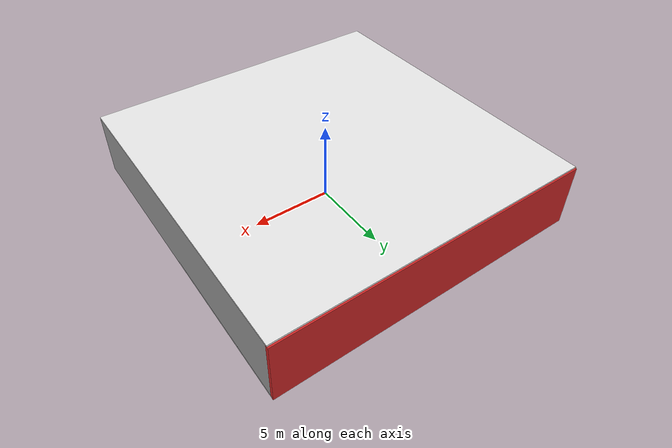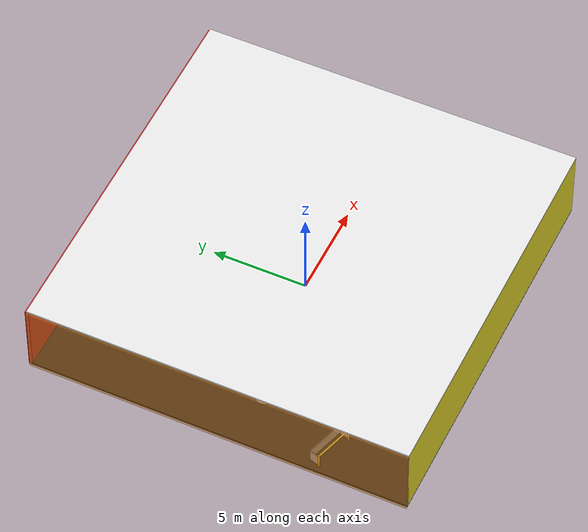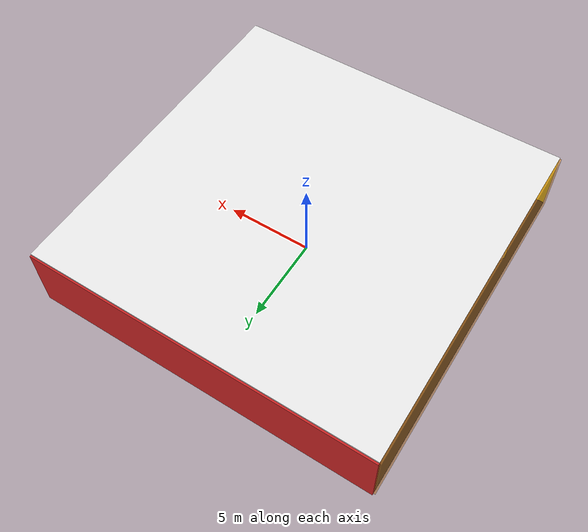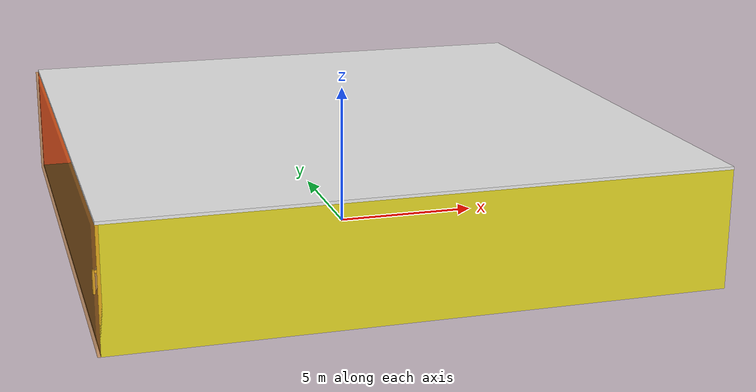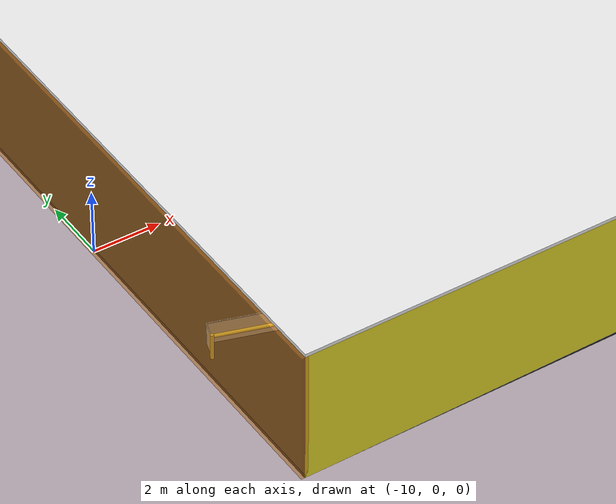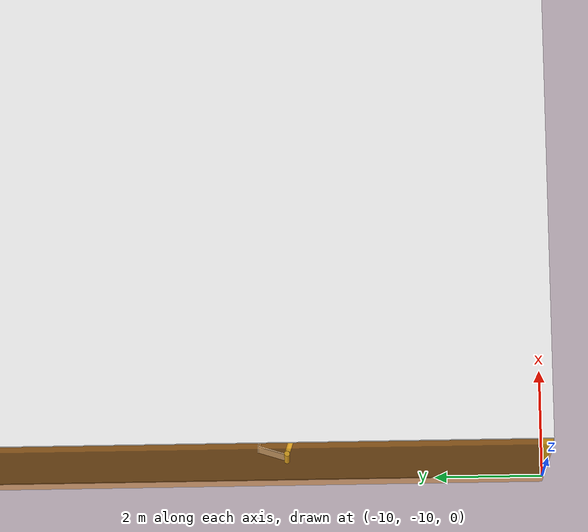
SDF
<sdf version="1.4">
 <world name="default">
  <physics type="ode">
   <max_step_size>0.001</max_step_size>
   <real_time_factor>1</real_time_factor>
   <real_time_update_rate>1000</real_time_update_rate>
   <gravity>0 0 -9.8</gravity>
  </physics>
  <scene><ambient>0.4 0.4 0.4 1</ambient><background>0.7 0.7 0.7 1</background><shadows>1</shadows></scene>
  <model name="Surrounding">
   <static>1</static>
   <link name="Ceiling">
    <collision name="Ceiling_Collision"><geometry><box><size>20 20 0.1</size></box></geometry></collision>
    <visual name="Ceiling_Visual">
     <geometry><box><size>20 20 0.1</size></box></geometry>
     <material>
      <script><uri>file://media/materials/scripts/gazebo.material</uri><name>Gazebo/White</name></script>
     </material>
    </visual>
    <pose>0 0 4.05 0 0 0</pose>
   </link>
   <link name="Wall_South">
    <collision name="Wall_South_Collision">
     <geometry><box><size>20 0 4</size></box></geometry>
     <pose>0 0 2 0 -0 0</pose>
    </collision>
    <visual name="Wall_South_Visual">
     <pose>0 0 2 0 -0 0</pose>
     <geometry><box><size>20 0 4</size></box></geometry>
     <material>
      <script><uri>file://media/materials/scripts/gazebo.material</uri><name>Gazebo/YellowGlow</name></script>
     </material>
    </visual>
    <velocity_decay><linear>0</linear><angular>0</angular></velocity_decay>
    <pose>0 -10 0 0 -0 0</pose>
   </link>
   <link name="Wall_East">
    <collision name="Wall_21_Collision">
     <geometry><box><size>20 0 4</size></box></geometry>
     <pose>0 0 2 0 -0 0</pose>
    </collision>
    <visual name="Wall_21_Visual">
     <pose>0 0 2 0 -0 0</pose>
     <geometry><box><size>20 0 4</size></box></geometry>
     <material>
      <script><uri>file://media/materials/scripts/gazebo.material</uri><name>Gazebo/GreyGradientSky</name></script>
     </material>
    </visual>
    <velocity_decay><linear>0</linear><angular>0</angular></velocity_decay>
    <pose>10 0 0 0 -0 1.5708</pose>
   </link>
   <link name="Wall_North">
    <collision name="Wall_22_Collision">
     <geometry><box><size>20 0.2 4</size></box></geometry>
     <pose>0 0 2 0 -0 0</pose>
    </collision>
    <visual name="Wall_22_Visual">
     <pose>0 0 2 0 -0 0</pose>
     <geometry><box><size>20 0.2 4</size></box></geometry>
     <material>
      <script><uri>file://media/materials/scripts/gazebo.material</uri><name>Gazebo/RedGlow</name></script>
     </material>
    </visual>
    <velocity_decay><linear>0</linear><angular>0</angular></velocity_decay>
    <pose>0 10 0 0 -0 0</pose>
   </link>
   <link name="Wall_West">
    <collision name="Wall_23_Collision">
     <geometry><box><size>20 0.2 4</size></box></geometry>
     <pose>0 0 2 0 -0 0</pose>
    </collision>
    <visual name="Wall_23_Visual">
     <pose>0 0 2 0 -0 0</pose>
     <geometry><box><size>20 0.2 4</size></box></geometry>
     <material>
      <script>
       <uri>file://media/materials/scripts/gazebo.material</uri>
       <name>Gazebo/OrangeTransparent</name>
      </script>
     </material>
    </visual>
    <velocity_decay><linear>0</linear><angular>0</angular></velocity_decay>
    <pose>-10 0 0 0 0 -1.5708</pose>
   </link>
   <link name="Ground_link">
    <collision name="collision">
     <pose>0 0 .05 0 -0 0</pose>
     <geometry><box><size>20 20 0.1</size></box></geometry>
    </collision>
    <visual name="visual">
     <pose>0 0 .05 0 -0 0</pose>
     <geometry><box><size>20 20 0.1</size></box></geometry>
     <material>
      <script><uri>file://media/materials/scripts/gazebo.material</uri><name>Gazebo/FlatBlack</name></script>
     </material>
    </visual>
   </link>
   <static>1</static>
  </model>
  <spherical_coordinates>
   <surface_model>EARTH_WGS84</surface_model>
   <latitude_deg>0</latitude_deg>
   <longitude_deg>0</longitude_deg>
   <elevation>0</elevation>
   <heading_deg>0</heading_deg>
  </spherical_coordinates>
  <light name="lightball_0" type="diffuse">
   <diffuse>0.8 0.8 0.8 1</diffuse>
   <specular>0.2 0.2 0.2 1</specular>
   <attenuation>
    <range>100</range>
    <constant>0.7</constant>
    <linear>0.01</linear>
    <quadratic>0.001</quadratic>
   </attenuation>
   <direction>-0.5 0.1 -0.9</direction>
   <pose>3.74240497516 1.02714031986 2.77479388131 0 0 0</pose>
  </light>
  <light name="lightball_1" type="diffuse">
   <diffuse>0.8 0.8 0.8 1</diffuse>
   <specular>0.2 0.2 0.2 1</specular>
   <attenuation>
    <range>100</range>
    <constant>0.7</constant>
    <linear>0.01</linear>
    <quadratic>0.001</quadratic>
   </attenuation>
   <direction>-0.5 0.1 -0.9</direction>
   <pose>-4.20317650977 -3.43361009668 3.38952698086 0 0 0</pose>
  </light>
  <light name="lightball_2" type="diffuse">
   <diffuse>0.8 0.8 0.8 1</diffuse>
   <specular>0.2 0.2 0.2 1</specular>
   <attenuation>
    <range>100</range>
    <constant>0.7</constant>
    <linear>0.01</linear>
    <quadratic>0.001</quadratic>
   </attenuation>
   <direction>-0.5 0.1 -0.9</direction>
   <pose>-8.08109676438 7.47706522649 2.09544960542 0 0 0</pose>
  </light>
  <light name="lightball_3" type="diffuse">
   <diffuse>0.8 0.8 0.8 1</diffuse>
   <specular>0.2 0.2 0.2 1</specular>
   <attenuation>
    <range>100</range>
    <constant>0.7</constant>
    <linear>0.01</linear>
    <quadratic>0.001</quadratic>
   </attenuation>
   <direction>-0.5 0.1 -0.9</direction>
   <pose>-7.2395933004 -2.48249838829 3.39748582723 0 0 0</pose>
  </light>
  <light name="lightball_4" type="diffuse">
   <diffuse>0.8 0.8 0.8 1</diffuse>
   <specular>0.2 0.2 0.2 1</specular>
   <attenuation>
    <range>100</range>
    <constant>0.7</constant>
    <linear>0.01</linear>
    <quadratic>0.001</quadratic>
   </attenuation>
   <direction>-0.5 0.1 -0.9</direction>
   <pose>-9.24289412239 -0.630140473675 3.58467248974 0 0 0</pose>
  </light>
  <light name="lightball_5" type="diffuse">
   <diffuse>0.8 0.8 0.8 1</diffuse>
   <specular>0.2 0.2 0.2 1</specular>
   <attenuation>
    <range>100</range>
    <constant>0.7</constant>
    <linear>0.01</linear>
    <quadratic>0.001</quadratic>
   </attenuation>
   <direction>-0.5 0.1 -0.9</direction>
   <pose>3.09929621963 -8.63172809203 3.8551975645 0 0 0</pose>
  </light>
  <light name="lightball_6" type="diffuse">
   <diffuse>0.8 0.8 0.8 1</diffuse>
   <specular>0.2 0.2 0.2 1</specular>
   <attenuation>
    <range>100</range>
    <constant>0.7</constant>
    <linear>0.01</linear>
    <quadratic>0.001</quadratic>
   </attenuation>
   <direction>-0.5 0.1 -0.9</direction>
   <pose>4.2570621036 -9.17966370233 3.01165371202 0 0 0</pose>
  </light>
  <include>
   <uri>model://robocup_3Dsim_goal</uri>
   <pose>-8.65069896384 -5.5513457453 0 0 0 1.26725509609</pose>
  </include>
  <include>
   <uri>model://textured_shapes</uri>
   <pose>-6.6847027578 -2.5988944314 0 0 0 0.229225870203</pose>
  </include>
  <include><uri>model://cabinet</uri><pose>-5.1528792934 -7.58073041152 0 0 0 1.71776001085</pose></include>
  <include><uri>model://cabinet</uri><pose>-0.722921693795 -0.324258549654 0 0 0 1.31227808289</pose></include>
  <include><uri>model://table</uri><pose>1.89971267289 -0.37682335683 0 0 0 2.87041331763</pose></include>
  <include><uri>model://table</uri><pose>2.09653220922 1.89737237608 0 0 0 0.105831134186</pose></include>
  <include>
   <uri>model://textured_shapes</uri>
   <pose>5.5630485295 -4.71493386782 0 0 0 0.3729196807</pose>
  </include>
 </world>
</sdf>

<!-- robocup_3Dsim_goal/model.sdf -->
<sdf version="1.5">
  <model name="robocup_3d_goal">
    <static>true</static>
    <link name="left_post">
      <pose>0 1.05 0.45 0 0 0</pose>
      <collision name="collision">
        <geometry>
          <cylinder>
            <radius>0.05</radius>
            <length>0.9</length>
          </cylinder>
        </geometry>
      </collision>
      <visual name="visual">
        <geometry>
          <cylinder>
            <radius>0.05</radius>
            <length>0.9</length>
          </cylinder>
        </geometry>
        <material>
          <script>
            <uri>file://media/materials/scripts/gazebo.material</uri>
            <name>Gazebo/ZincYellow</name>
          </script>
        </material>
      </visual>
    </link>
    <link name="left_support_horiz_lower">
      <pose>0.30 1.05 0.01 0 0 0</pose>
      <collision name="collision">
        <geometry>
          <box>
            <size>0.50 0.02 0.02</size>
          </box>
        </geometry>
      </collision>
      <visual name="visual">
        <geometry>
          <box>
            <size>0.50 0.02 0.02</size>
          </box>
        </geometry>
        <material>
          <script>
            <uri>file://media/materials/scripts/gazebo.material</uri>
            <name>Gazebo/White</name>
          </script>
        </material>
      </visual>
    </link>
    <link name="left_support_horiz_upper">
      <pose>0.30 1.05 0.79 0 0 0</pose>
      <collision name="collision">
        <geometry>
          <box>
            <size>0.50 0.02 0.02</size>
          </box>
        </geometry>
      </collision>
      <visual name="visual">
        <geometry>
          <box>
            <size>0.50 0.02 0.02</size>
          </box>
        </geometry>
        <material>
          <script>
            <uri>file://media/materials/scripts/gazebo.material</uri>
            <name>Gazebo/White</name>
          </script>
        </material>
      </visual>
    </link>
    <link name="left_support_vertical">
      <pose>0.56 1.05 0.4 0 1.5708 0</pose>
      <collision name="collision">
        <geometry>
          <box>
            <size>0.80 0.02 0.02</size>
          </box>
        </geometry>
      </collision>
      <visual name="visual">
        <geometry>
          <box>
            <size>0.80 0.02 0.02</size>
          </box>
        </geometry>
        <material>
          <script>
            <uri>file://media/materials/scripts/gazebo.material</uri>
            <name>Gazebo/White</name>
          </script>
        </material>
      </visual>
    </link>
    <link name="right_support_horiz_lower">
      <pose>0.30 -1.05 0.01 0 0 0</pose>
      <collision name="collision">
        <geometry>
          <box>
            <size>0.50 0.02 0.02</size>
          </box>
        </geometry>
      </collision>
      <visual name="visual">
        <geometry>
          <box>
            <size>0.50 0.02 0.02</size>
          </box>
        </geometry>
        <material>
          <script>
            <uri>file://media/materials/scripts/gazebo.material</uri>
            <name>Gazebo/White</name>
          </script>
        </material>
      </visual>
    </link>
    <link name="right_support_horiz_upper">
      <pose>0.30 -1.05 0.79 0 0 0</pose>
      <collision name="collision">
        <geometry>
          <box>
            <size>0.50 0.02 0.02</size>
          </box>
        </geometry>
      </collision>
      <visual name="visual">
        <geometry>
          <box>
            <size>0.50 0.02 0.02</size>
          </box>
        </geometry>
        <material>
          <script>
            <uri>file://media/materials/scripts/gazebo.material</uri>
            <name>Gazebo/White</name>
          </script>
        </material>
      </visual>
    </link>
    <link name="right_support_vertical">
      <pose>0.56 -1.05 0.4 0 1.5708 0</pose>
      <collision name="collision">
        <geometry>
          <box>
            <size>0.80 0.02 0.02</size>
          </box>
        </geometry>
      </collision>
      <visual name="visual">
        <geometry>
          <box>
            <size>0.80 0.02 0.02</size>
          </box>
        </geometry>
        <material>
          <script>
            <uri>file://media/materials/scripts/gazebo.material</uri>
            <name>Gazebo/White</name>
          </script>
        </material>
      </visual>
    </link>
    <link name="center_support_horiz_lower">
      <pose>0.56 0 0.01 0 1.5708 0</pose>
      <collision name="collision">
        <geometry>
          <box>
            <size>0.02 2.08 0.02</size>
          </box>
        </geometry>
      </collision>
      <visual name="visual">
        <geometry>
          <box>
            <size>0.02 2.08 0.02</size>
          </box>
        </geometry>
        <material>
          <script>
            <uri>file://media/materials/scripts/gazebo.material</uri>
            <name>Gazebo/White</name>
          </script>
        </material>
      </visual>
    </link>
    <link name="center_support_horiz_upper">
      <pose>0.56 0 0.79 0 1.5708 0</pose>
      <collision name="collision">
        <geometry>
          <box>
            <size>0.02 2.08 0.02</size>
          </box>
        </geometry>
      </collision>
      <visual name="visual">
        <geometry>
          <box>
            <size>0.02 2.08 0.02</size>
          </box>
        </geometry>
        <material>
          <script>
            <uri>file://media/materials/scripts/gazebo.material</uri>
            <name>Gazebo/White</name>
          </script>
        </material>
      </visual>
    </link>
    <link name="right_post">
      <pose>0 -1.05 0.45 0 0 0</pose>
      <collision name="collision">
        <geometry>
          <cylinder>
            <radius>0.05</radius>
            <length>0.9</length>
          </cylinder>
        </geometry>
      </collision>
      <visual name="visual">
        <geometry>
          <cylinder>
            <radius>0.05</radius>
            <length>0.9</length>
          </cylinder>
        </geometry>
        <material>
          <script>
            <uri>file://media/materials/scripts/gazebo.material</uri>
            <name>Gazebo/ZincYellow</name>
          </script>
        </material>
      </visual>
    </link>
    <link name="crossbar">
      <pose>0 0 0.85 1.57 1.57 0</pose>
      <collision name="collision">
        <geometry>
          <cylinder>
            <radius>0.05</radius>
            <length>2.0</length>
          </cylinder>
        </geometry>
      </collision>
      <visual name="visual">
        <geometry>
          <cylinder>
            <radius>0.05</radius>
            <length>2.0</length>
          </cylinder>
        </geometry>
        <material>
          <script>
            <uri>file://media/materials/scripts/gazebo.material</uri>
            <name>Gazebo/ZincYellow</name>
          </script>
        </material>
      </visual>
    </link>
    <link name="center_net">
      <pose>0.56 0 0.40 0 0 0</pose>
      <collision name="collision">
        <geometry>
          <box>
            <size>0.01 2.1 0.80</size>
          </box>
        </geometry>
      </collision>
      <visual name="visual">
        <geometry>
          <box>
            <size>0.01 2.1 0.80</size>
          </box>
        </geometry>
        <material>
          <script>
            <uri>model://../model_source/models/robocup09_spl_field/materials/scripts/</uri>
            <uri>model://../model_source/models/robocup09_spl_field/materials/textures/</uri>
            <name>RoboCup/Net</name>
          </script>
        </material>
      </visual>
    </link>
    <link name="left_net">
      <pose>0.30 1.05 0.40 0 0 0</pose>
      <collision name="collision">
        <geometry>
          <box>
            <size>0.50 0.01 0.76</size>
          </box>
        </geometry>
      </collision>
      <visual name="visual">
        <geometry>
          <box>
            <size>0.50 0.01 0.76</size>
          </box>
        </geometry>
        <material>
          <script>
            <uri>model://../model_source/models/robocup09_spl_field/materials/scripts/</uri>
            <uri>model://../model_source/models/robocup09_spl_field/materials/textures/</uri>
            <name>RoboCup/Net</name>
          </script>
        </material>
      </visual>
    </link>
    <link name="right_net">
      <pose>0.30 -1.05 0.40 0 0 0</pose>
      <collision name="collision">
        <geometry>
          <box>
            <size>0.50 0.01 0.76</size>
          </box>
        </geometry>
      </collision>
      <visual name="visual">
        <geometry>
          <box>
            <size>0.50 0.01 0.76</size>
          </box>
        </geometry>
        <material>
          <script>
            <uri>model://../model_source/models/robocup09_spl_field/materials/scripts/</uri>
            <uri>model://../model_source/models/robocup09_spl_field/materials/textures/</uri>
            <name>RoboCup/Net</name>
          </script>
        </material>
      </visual>
    </link>
  </model>
</sdf>

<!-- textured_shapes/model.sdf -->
<sdf version="1.6">
  <model name="textured_shapes">
    <pose>0 0 0.5 0 0 0</pose>
    <link name="box">
      <pose>0 -1.5 0 0 0 0</pose>
      <collision name="collision">
        <geometry>
          <box>
            <size>1 1 1</size>
          </box>
        </geometry>
      </collision>
      <visual name="visual">
        <geometry>
          <box>
            <size>1 1 1</size>
          </box>
        </geometry>
        <material>
          <script>
            <uri>model://../model_source/models/textured_shapes/materials/scripts</uri>
            <uri>model://../model_source/models/textured_shapes/materials/textures</uri>
            <name>TexturedShape/Squares</name>
          </script>
        </material>
      </visual>
    </link>
    <link name="sphere">
      <collision name="collision">
        <geometry>
          <sphere>
            <radius>0.5</radius>
          </sphere>
        </geometry>
      </collision>
      <visual name="visual">
        <geometry>
          <sphere>
            <radius>0.5</radius>
          </sphere>
        </geometry>
        <material>
          <script>
            <uri>model://../model_source/models/textured_shapes/materials/scripts</uri>
            <uri>model://../model_source/models/textured_shapes/materials/textures</uri>
            <name>TexturedShape/Squares</name>
          </script>
        </material>
      </visual>
    </link>
    <link name="cylinder">
      <pose>0 1.5 0 0 0 0</pose>
      <collision name="collision">
        <geometry>
          <cylinder>
            <radius>0.5</radius>
            <length>1</length>
          </cylinder>
        </geometry>
      </collision>
      <visual name="visual">
        <geometry>
          <cylinder>
            <radius>0.5</radius>
            <length>1</length>
          </cylinder>
        </geometry>
        <material>
          <script>
            <uri>model://../model_source/models/textured_shapes/materials/scripts</uri>
            <uri>model://../model_source/models/textured_shapes/materials/textures</uri>
            <name>TexturedShape/Squares</name>
          </script>
        </material>
      </visual>
    </link>
  </model>
</sdf>

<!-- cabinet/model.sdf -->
<sdf version="1.5">
  <model name="cabinet">
    <static>true</static>
    <link name="cabinet_bottom_plate">
      <inertial>
        <pose>0 0 -1 0 0 0</pose>
        <inertia>
          <ixx>2.050000</ixx>
          <ixy>0</ixy>
          <ixz>0</ixz>
          <iyy>2.050000</iyy>
          <iyz>0</iyz>
          <izz>2.050000</izz>
        </inertia>
        <mass>25.000000</mass>
      </inertial>
      <collision name="cabinet_bottom_plate_geom">
        <pose>0 0 0.010000 0 0 0</pose>
        <geometry>
          <box>
            <size>0.450000 0.450000 0.020000</size>
          </box>
        </geometry>
      </collision>
      <visual name="cabinet_bottom_plate_geom_visual">
        <pose>0 0 0.010000 0 0 0</pose>
        <geometry>
          <box>
            <size>0.450000 0.450000 0.020000</size>
          </box>
        </geometry>
        <material>
          <script>
            <uri>model://media/materials/scripts/gazebo.material</uri>
            <name>Gazebo/Wood</name>
          </script>
        </material>
      </visual>
      <collision name="cabinet_bottom_plate_geom_cabinet_back_plate">
        <pose>0.235000 0 0.510000 0 0 0</pose>
        <geometry>
          <box>
            <size>0.020000 0.450000 1.020000</size>
          </box>
        </geometry>
      </collision>
      <visual name="cabinet_bottom_plate_geom_cabinet_back_plate_visual">
        <pose>0.235000 0 0.510000 0 0 0</pose>
        <geometry>
          <box>
            <size>0.020000 0.450000 1.020000</size>
          </box>
        </geometry>
        <material>
          <script>
            <uri>model://media/materials/scripts/gazebo.material</uri>
            <name>Gazebo/Wood</name>
          </script>
        </material>
      </visual>
      <collision name="cabinet_bottom_plate_geom_cabinet_left_plate">
        <pose>0 0.235000 0.510000 0 0 0</pose>
        <geometry>
          <box>
            <size>0.450000 0.020000 1.020000</size>
          </box>
        </geometry>
      </collision>
      <visual name="cabinet_bottom_plate_geom_cabinet_left_plate_visual">
        <pose>0 0.235000 0.510000 0 0 0</pose>
        <geometry>
          <box>
            <size>0.450000 0.020000 1.020000</size>
          </box>
        </geometry>
        <material>
          <script>
            <uri>model://media/materials/scripts/gazebo.material</uri>
            <name>Gazebo/Wood</name>
          </script>
        </material>
      </visual>
      <collision name="cabinet_bottom_plate_geom_cabinet_middle_plate">
        <pose>0 0 0.510000 0 0 0</pose>
        <geometry>
          <box>
            <size>0.450000 0.450000 0.020000</size>
          </box>
        </geometry>
      </collision>
      <visual name="cabinet_bottom_plate_geom_cabinet_middle_plate_visual">
        <pose>0 0 0.510000 0 0 0</pose>
        <geometry>
          <box>
            <size>0.450000 0.450000 0.020000</size>
          </box>
        </geometry>
        <material>
          <script>
            <uri>model://media/materials/scripts/gazebo.material</uri>
            <name>Gazebo/Wood</name>
          </script>
        </material>
      </visual>
      <collision name="cabinet_bottom_plate_geom_cabinet_right_plate">
        <pose>0 -0.235000 0.510000 0 0 0</pose>
        <geometry>
          <box>
            <size>0.450000 0.020000 1.020000</size>
          </box>
        </geometry>
      </collision>
      <visual name="cabinet_bottom_plate_geom_cabinet_right_plate_visual">
        <pose>0 -0.235000 0.510000 0 0 0</pose>
        <geometry>
          <box>
            <size>0.450000 0.020000 1.020000</size>
          </box>
        </geometry>
        <material>
          <script>
            <uri>model://media/materials/scripts/gazebo.material</uri>
            <name>Gazebo/Wood</name>
          </script>
        </material>
      </visual>
      <collision name="cabinet_bottom_plate_geom_cabinet_top_plate">
        <pose>0 0 1.010000 0 0 0</pose>
        <geometry>
          <box>
            <size>0.450000 0.450000 0.020000</size>
          </box>
        </geometry>
      </collision>
      <visual name="cabinet_bottom_plate_geom_cabinet_top_plate_visual">
        <pose>0 0 1.010000 0 0 0</pose>
        <geometry>
          <box>
            <size>0.450000 0.450000 0.020000</size>
          </box>
        </geometry>
        <material>
          <script>
            <uri>model://media/materials/scripts/gazebo.material</uri>
            <name>Gazebo/Wood</name>
          </script>
        </material>
      </visual>
    </link>
  </model>
</sdf>

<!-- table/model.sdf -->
<sdf version="1.5">
  <model name="table">
    <static>true</static>
    <link name="link">
      <collision name="surface">
        <pose>0 0 1.0 0 0 0</pose>
        <geometry>
          <box>
            <size>1.5 0.8 0.03</size>
          </box>
        </geometry>
        <surface>
          <friction>
            <ode>
              <mu>0.6</mu>
              <mu2>0.6</mu2>
            </ode>
          </friction>
        </surface>
      </collision>
      <visual name="visual1">
        <pose>0 0 1.0 0 0 0</pose>
        <geometry>
          <box>
            <size>1.5 0.8 0.03</size>
          </box>
        </geometry>
        <material>
          <script>
            <uri>model://media/materials/scripts/gazebo.material</uri>
            <name>Gazebo/Wood</name>
          </script>
        </material>
      </visual>
      <collision name="front_left_leg">
        <pose>0.68 0.38 0.5 0 0 0</pose>
        <geometry>
          <cylinder>
            <radius>0.02</radius>
            <length>1.0</length>
          </cylinder>
        </geometry>
      </collision>
      <visual name="front_left_leg">
        <pose>0.68 0.38 0.5 0 0 0</pose>
        <geometry>
          <cylinder>
            <radius>0.02</radius>
            <length>1.0</length>
          </cylinder>
        </geometry>
        <material>
          <script>
            <uri>model://media/materials/scripts/gazebo.material</uri>
            <name>Gazebo/Grey</name>
          </script>
        </material>
      </visual>
      <collision name="front_right_leg">
        <pose>0.68 -0.38 0.5 0 0 0</pose>
        <geometry>
          <cylinder>
            <radius>0.02</radius>
            <length>1.0</length>
          </cylinder>
        </geometry>
      </collision>
      <visual name="front_right_leg">
        <pose>0.68 -0.38 0.5 0 0 0</pose>
        <geometry>
          <cylinder>
            <radius>0.02</radius>
            <length>1.0</length>
          </cylinder>
        </geometry>
        <material>
          <script>
            <uri>model://media/materials/scripts/gazebo.material</uri>
            <name>Gazebo/Grey</name>
          </script>
        </material>
      </visual>
      <collision name="back_right_leg">
        <pose>-0.68 -0.38 0.5 0 0 0</pose>
        <geometry>
          <cylinder>
            <radius>0.02</radius>
            <length>1.0</length>
          </cylinder>
        </geometry>
      </collision>
      <visual name="back_right_leg">
        <pose>-0.68 -0.38 0.5 0 0 0</pose>
        <geometry>
          <cylinder>
            <radius>0.02</radius>
            <length>1.0</length>
          </cylinder>
        </geometry>
        <material>
          <script>
            <uri>model://media/materials/scripts/gazebo.material</uri>
            <name>Gazebo/Grey</name>
          </script>
        </material>
      </visual>
      <collision name="back_left_leg">
        <pose>-0.68 0.38 0.5 0 0 0</pose>
        <geometry>
          <cylinder>
            <radius>0.02</radius>
            <length>1.0</length>
          </cylinder>
        </geometry>
      </collision>
      <visual name="back_left_leg">
        <pose>-0.68 0.38 0.5 0 0 0</pose>
        <geometry>
          <cylinder>
            <radius>0.02</radius>
            <length>1.0</length>
          </cylinder>
        </geometry>
        <material>
          <script>
            <uri>model://media/materials/scripts/gazebo.material</uri>
            <name>Gazebo/Grey</name>
          </script>
        </material>
      </visual>
    </link>
  </model>
</sdf>
